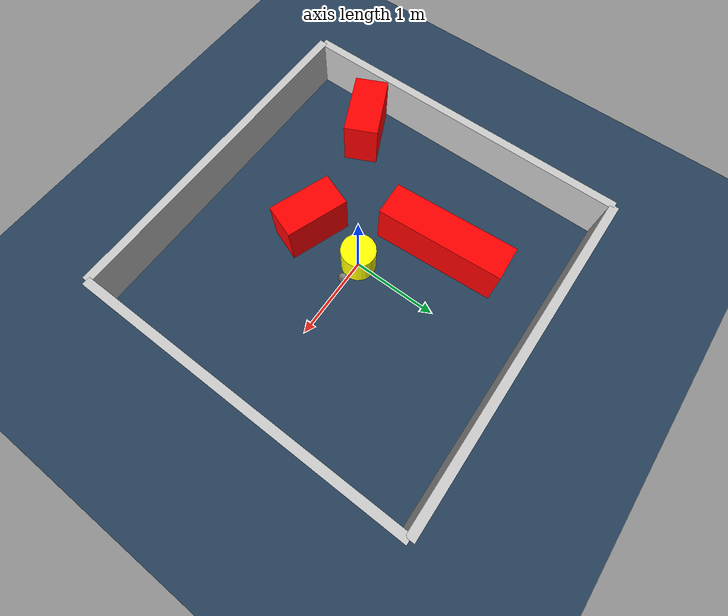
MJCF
<?xml version="1.0" ?>
<mujoco model="generated_environment">
  <option timestep="0.01" integrator="RK4" cone="elliptic"/>
  <default>
    <geom density="1"/>
  </default>
  <asset>
    <texture builtin="gradient" height="3072" rgb1="0.3 0.5 0.7" rgb2="0 0 0" type="skybox" width="512"/>
    <texture builtin="checker" height="300" mark="edge" markrgb="0.8 0.8 0.8" name="groundplane" rgb1="0.2 0.3 0.4" rgb2="0.1 0.2 0.3" type="2d" width="300"/>
    <material name="groundplane" reflectance="0.2" texrepeat="5 5" texture="groundplane" texuniform="true"/>
    <material name="robot" rgba="0.0 1.0 0.0 1"/>
  </asset>
  <worldbody>
    <light dir="0 0 -1" directional="true" pos="0 0 1.5"/>
    <geom condim="4" friction="1.0 0.005 0.001" material="groundplane" name="floor" size="0 0 0.05" type="plane"/>
    <body name="walls">
      <geom name="wall_1" condim="4" pos="-2.0 0.0 0.3" rgba="0.800000011920929 0.800000011920929 0.800000011920929 1.0" size="0.05 2.0 0.3" type="box"/>
      <geom name="wall_2" condim="4" pos="2.0 0.0 0.3" rgba="0.800000011920929 0.800000011920929 0.800000011920929 1.0" size="0.05 2.0 0.3" type="box"/>
      <geom name="wall_3" condim="4" pos="0.0 -2.0 0.3" rgba="0.800000011920929 0.800000011920929 0.800000011920929 1.0" size="2.0 0.05 0.3" type="box"/>
      <geom name="wall_4" condim="4" pos="0.0 2.0 0.3" rgba="0.800000011920929 0.800000011920929 0.800000011920929 1.0" size="2.0 0.05 0.3" type="box"/>
    </body>
    <body name="robot">
      <joint name="joint_x" type="slide" pos="0 0 0" axis="1 0 0"/>
      <joint name="joint_y" type="slide" pos="0 0 0" axis="0 1 0"/>
      <geom name="robot" type="sphere" pos="0.3 0.0 0.2" size="0.05" mass="5." friction="1.0 0.005 0.0001" condim="4" rgba="0.5 0.5 0.5 1.0"/>
      <site name="sensor_ball"/>
    </body>
    <body name="obstacle_movable_1">
      <geom name="obstacle_movable_1" condim="4" pos="0.0 0.0 0.2" euler="0 0 0.0" friction="1.0 0.005 0.001" rgba="1.0 1.0 0.0 1.0" size="0.2 0.2 0.0" type="cylinder" mass="0.1"/>
      <joint type="free"/>
    </body>
    <body name="obstacle_2_static">
      <geom name="obstacle_2_static" condim="4" pos="-0.6778517153644699 0.6801857505549702 0.3" euler="0 0 273.4668590855077" friction="1.0 0.005 0.001" rgba="1 0 0 1" size="0.7314730569481968 0.2 0.3" type="box"/>
    </body>
    <body name="obstacle_3_static">
      <geom name="obstacle_3_static" condim="4" pos="-0.04012482495318315 -0.7083656775417424 0.3" euler="0 0 159.82394289330682" friction="1.0 0.005 0.001" rgba="1 0 0 1" size="0.371421219078009 0.2 0.3" type="box"/>
    </body>
    <body name="obstacle_4_static">
      <geom name="obstacle_4_static" condim="4" pos="-1.5147438825027233 -0.9885904503554702 0.3" euler="0 0 25.271148872329473" friction="1.0 0.005 0.001" rgba="1 0 0 1" size="0.38107213729171946 0.2 0.3" type="box"/>
    </body>
  </worldbody>
  <actuator>
    <motor name="actuator_x" joint="joint_x" gear="1" ctrlrange="-1 1"/>
    <motor name="actuator_y" joint="joint_y" gear="1" ctrlrange="-1 1"/>
  </actuator>
</mujoco>
